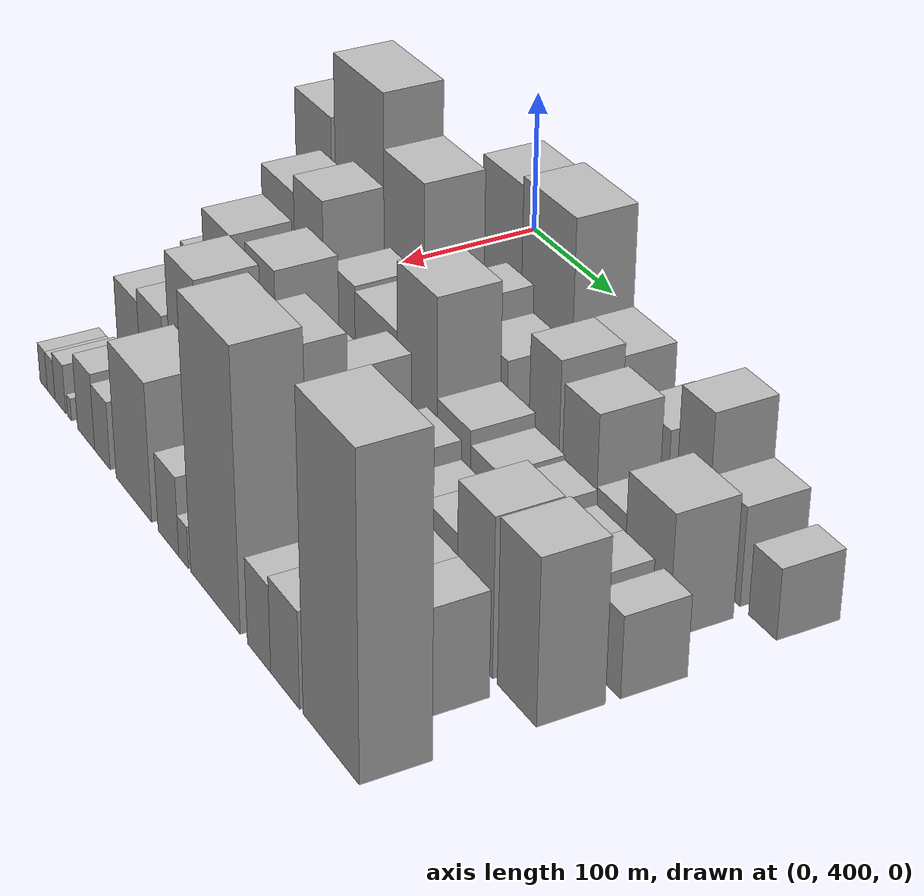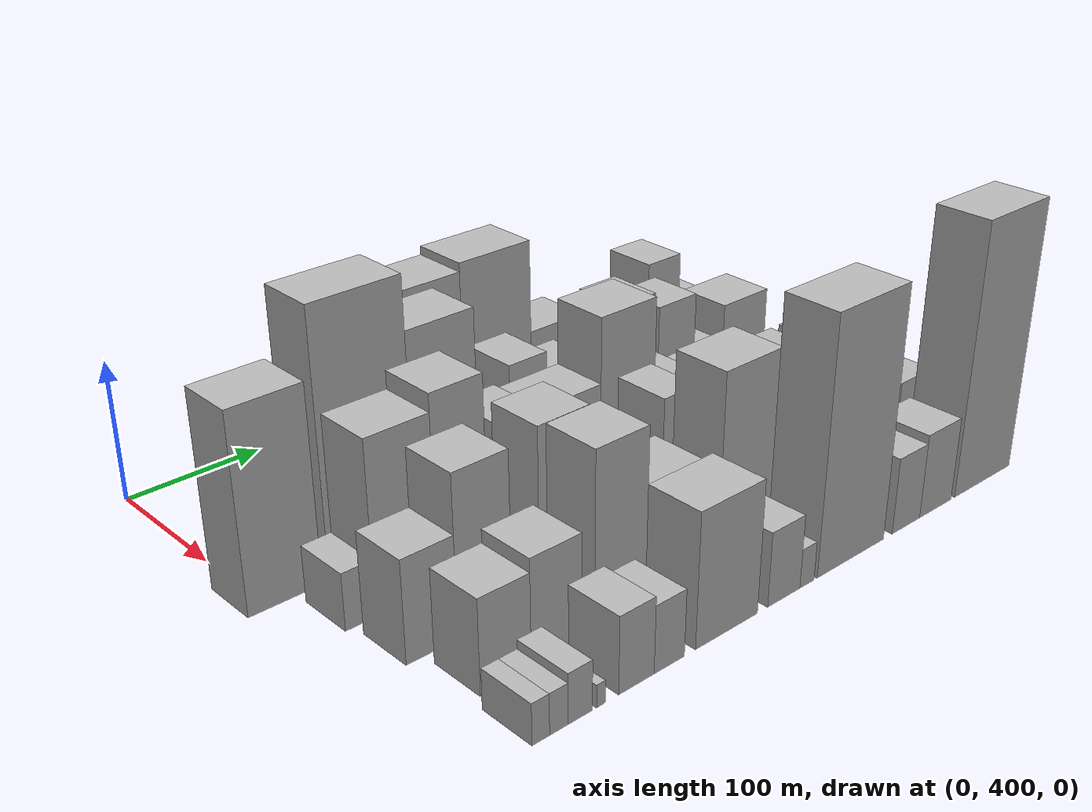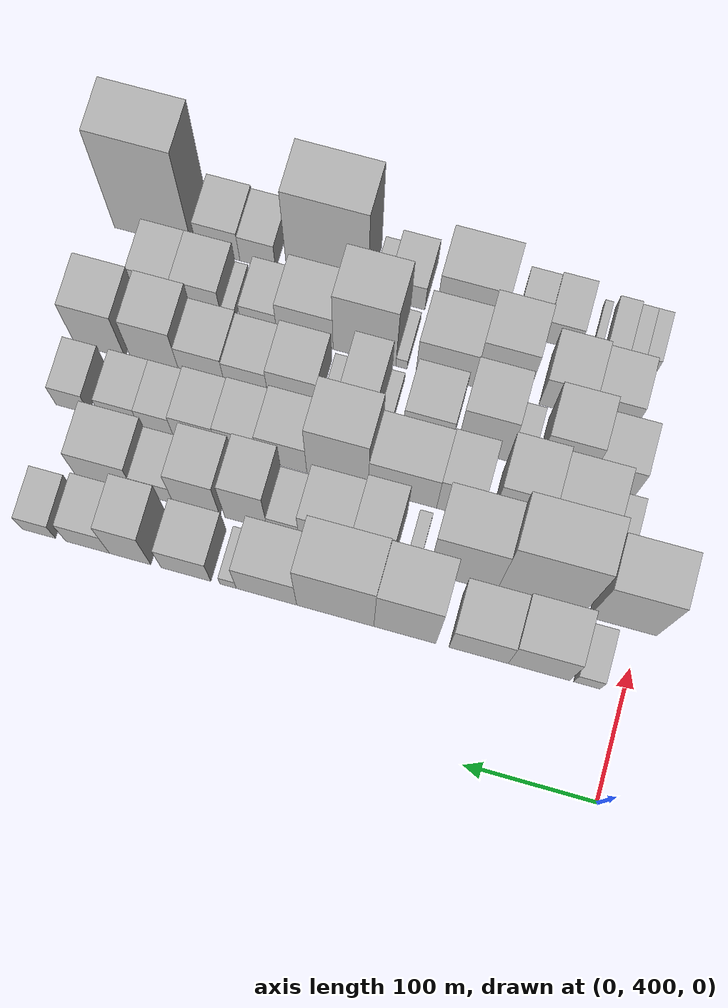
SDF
<sdf version="1.6">
 <world name="default">
  <model name="building_36">
   <static>1</static>
   <pose>100.0000 427.3676 0 0.000000 0.000000 0.000000</pose>
   <link name="link">
    <pose>0 0 18.00 0 0 0</pose>
    <collision name="collision"><geometry><box><size>40.0000 19.8844 36.0000</size></box></geometry></collision>
    <visual name="visual">
     <cast_shadows>0</cast_shadows>
     <geometry><box><size>40.0000 19.8844 36.0000</size></box></geometry>
     <material>
      <script>
       <uri>model://HANNAS_wall/materials/scripts</uri>
       <uri>model://HANNAS_wall/materials/textures</uri>
       <name>vrc/HANNAS_wall</name>
      </script>
     </material>
    </visual>
   </link>
  </model>
  <model name="building_37">
   <static>1</static>
   <pose>100.0000 463.5204 0 0.000000 0.000000 0.000000</pose>
   <link name="link">
    <pose>0 0 45.00 0 0 0</pose>
    <collision name="collision"><geometry><box><size>40.0000 46.4212 90.0000</size></box></geometry></collision>
    <visual name="visual">
     <cast_shadows>0</cast_shadows>
     <geometry><box><size>40.0000 46.4212 90.0000</size></box></geometry>
     <material>
      <script>
       <uri>model://HANNAS_wall/materials/scripts</uri>
       <uri>model://HANNAS_wall/materials/textures</uri>
       <name>vrc/HANNAS_wall</name>
      </script>
     </material>
    </visual>
   </link>
  </model>
  <model name="building_38">
   <static>1</static>
   <pose>100.0000 509.1310 0 0.000000 0.000000 0.000000</pose>
   <link name="link">
    <pose>0 0 40.50 0 0 0</pose>
    <collision name="collision"><geometry><box><size>40.0000 44.7999 81.0000</size></box></geometry></collision>
    <visual name="visual">
     <cast_shadows>0</cast_shadows>
     <geometry><box><size>40.0000 44.7999 81.0000</size></box></geometry>
     <material>
      <script>
       <uri>model://HANNAS_wall/materials/scripts</uri>
       <uri>model://HANNAS_wall/materials/textures</uri>
       <name>vrc/HANNAS_wall</name>
      </script>
     </material>
    </visual>
   </link>
  </model>
  <model name="building_39">
   <static>1</static>
   <pose>100.0000 565.0965 0 0.000000 0.000000 0.000000</pose>
   <link name="link">
    <pose>0 0 72.00 0 0 0</pose>
    <collision name="collision"><geometry><box><size>40.0000 47.1313 144.0000</size></box></geometry></collision>
    <visual name="visual">
     <cast_shadows>0</cast_shadows>
     <geometry><box><size>40.0000 47.1313 144.0000</size></box></geometry>
     <material>
      <script>
       <uri>model://HANNAS_wall/materials/scripts</uri>
       <uri>model://HANNAS_wall/materials/textures</uri>
       <name>vrc/HANNAS_wall</name>
      </script>
     </material>
    </visual>
   </link>
  </model>
  <model name="building_40">
   <static>1</static>
   <pose>100.0000 618.0978 0 0.000000 0.000000 0.000000</pose>
   <link name="link">
    <pose>0 0 75.00 0 0 0</pose>
    <collision name="collision"><geometry><box><size>40.0000 58.8712 150.0000</size></box></geometry></collision>
    <visual name="visual">
     <cast_shadows>0</cast_shadows>
     <geometry><box><size>40.0000 58.8712 150.0000</size></box></geometry>
     <material>
      <script>
       <uri>model://HANNAS_wall/materials/scripts</uri>
       <uri>model://HANNAS_wall/materials/textures</uri>
       <name>vrc/HANNAS_wall</name>
      </script>
     </material>
    </visual>
   </link>
  </model>
  <model name="building_41">
   <static>1</static>
   <pose>100.0000 670.7160 0 0.000000 0.000000 0.000000</pose>
   <link name="link">
    <pose>0 0 42.00 0 0 0</pose>
    <collision name="collision"><geometry><box><size>40.0000 46.3653 84.0000</size></box></geometry></collision>
    <visual name="visual">
     <cast_shadows>0</cast_shadows>
     <geometry><box><size>40.0000 46.3653 84.0000</size></box></geometry>
     <material>
      <script>
       <uri>model://HANNAS_wall/materials/scripts</uri>
       <uri>model://HANNAS_wall/materials/textures</uri>
       <name>vrc/HANNAS_wall</name>
      </script>
     </material>
    </visual>
   </link>
  </model>
  <model name="building_42">
   <static>1</static>
   <pose>100.0000 700.1381 0 0.000000 0.000000 0.000000</pose>
   <link name="link">
    <pose>0 0 13.50 0 0 0</pose>
    <collision name="collision"><geometry><box><size>40.0000 12.4789 27.0000</size></box></geometry></collision>
    <visual name="visual">
     <cast_shadows>0</cast_shadows>
     <geometry><box><size>40.0000 12.4789 27.0000</size></box></geometry>
     <material>
      <script>
       <uri>model://HANNAS_wall/materials/scripts</uri>
       <uri>model://HANNAS_wall/materials/textures</uri>
       <name>vrc/HANNAS_wall</name>
      </script>
     </material>
    </visual>
   </link>
  </model>
  <model name="building_43">
   <static>1</static>
   <pose>100.0000 732.5841 0 0.000000 0.000000 0.000000</pose>
   <link name="link">
    <pose>0 0 34.50 0 0 0</pose>
    <collision name="collision"><geometry><box><size>40.0000 38.4131 69.0000</size></box></geometry></collision>
    <visual name="visual">
     <cast_shadows>0</cast_shadows>
     <geometry><box><size>40.0000 38.4131 69.0000</size></box></geometry>
     <material>
      <script>
       <uri>model://HANNAS_wall/materials/scripts</uri>
       <uri>model://HANNAS_wall/materials/textures</uri>
       <name>vrc/HANNAS_wall</name>
      </script>
     </material>
    </visual>
   </link>
  </model>
  <model name="building_44">
   <static>1</static>
   <pose>100.0000 775.8096 0 0.000000 0.000000 0.000000</pose>
   <link name="link">
    <pose>0 0 51.00 0 0 0</pose>
    <collision name="collision"><geometry><box><size>40.0000 32.0379 102.0000</size></box></geometry></collision>
    <visual name="visual">
     <cast_shadows>0</cast_shadows>
     <geometry><box><size>40.0000 32.0379 102.0000</size></box></geometry>
     <material>
      <script>
       <uri>model://HANNAS_wall/materials/scripts</uri>
       <uri>model://HANNAS_wall/materials/textures</uri>
       <name>vrc/HANNAS_wall</name>
      </script>
     </material>
    </visual>
   </link>
  </model>
  <model name="building_45">
   <static>1</static>
   <pose>100.0000 808.8025 0 0.000000 0.000000 0.000000</pose>
   <link name="link">
    <pose>0 0 31.50 0 0 0</pose>
    <collision name="collision"><geometry><box><size>40.0000 33.9479 63.0000</size></box></geometry></collision>
    <visual name="visual">
     <cast_shadows>0</cast_shadows>
     <geometry><box><size>40.0000 33.9479 63.0000</size></box></geometry>
     <material>
      <script>
       <uri>model://HANNAS_wall/materials/scripts</uri>
       <uri>model://HANNAS_wall/materials/textures</uri>
       <name>vrc/HANNAS_wall</name>
      </script>
     </material>
    </visual>
   </link>
  </model>
  <model name="building_46">
   <static>1</static>
   <pose>100.0000 846.7750 0 0.000000 0.000000 0.000000</pose>
   <link name="link">
    <pose>0 0 22.50 0 0 0</pose>
    <collision name="collision"><geometry><box><size>40.0000 25.9970 45.0000</size></box></geometry></collision>
    <visual name="visual">
     <cast_shadows>0</cast_shadows>
     <geometry><box><size>40.0000 25.9970 45.0000</size></box></geometry>
     <material>
      <script>
       <uri>model://HANNAS_wall/materials/scripts</uri>
       <uri>model://HANNAS_wall/materials/textures</uri>
       <name>vrc/HANNAS_wall</name>
      </script>
     </material>
    </visual>
   </link>
  </model>
  <model name="building_84">
   <static>1</static>
   <pose>149.0000 412.4427 0 0.000000 0.000000 0.000000</pose>
   <link name="link">
    <pose>0 0 67.50 0 0 0</pose>
    <collision name="collision"><geometry><box><size>40.0000 51.4021 135.0000</size></box></geometry></collision>
    <visual name="visual">
     <cast_shadows>0</cast_shadows>
     <geometry><box><size>40.0000 51.4021 135.0000</size></box></geometry>
     <material>
      <script>
       <uri>model://HANNAS_wall/materials/scripts</uri>
       <uri>model://HANNAS_wall/materials/textures</uri>
       <name>vrc/HANNAS_wall</name>
      </script>
     </material>
    </visual>
   </link>
  </model>
  <model name="building_85">
   <static>1</static>
   <pose>149.0000 475.8453 0 0.000000 0.000000 0.000000</pose>
   <link name="link">
    <pose>0 0 90.00 0 0 0</pose>
    <collision name="collision"><geometry><box><size>40.0000 65.4031 180.0000</size></box></geometry></collision>
    <visual name="visual">
     <cast_shadows>0</cast_shadows>
     <geometry><box><size>40.0000 65.4031 180.0000</size></box></geometry>
     <material>
      <script>
       <uri>model://HANNAS_wall/materials/scripts</uri>
       <uri>model://HANNAS_wall/materials/textures</uri>
       <name>vrc/HANNAS_wall</name>
      </script>
     </material>
    </visual>
   </link>
  </model>
  <model name="building_86">
   <static>1</static>
   <pose>149.0000 534.3117 0 0.000000 0.000000 0.000000</pose>
   <link name="link">
    <pose>0 0 72.00 0 0 0</pose>
    <collision name="collision"><geometry><box><size>40.0000 51.5299 144.0000</size></box></geometry></collision>
    <visual name="visual">
     <cast_shadows>0</cast_shadows>
     <geometry><box><size>40.0000 51.5299 144.0000</size></box></geometry>
     <material>
      <script>
       <uri>model://HANNAS_wall/materials/scripts</uri>
       <uri>model://HANNAS_wall/materials/textures</uri>
       <name>vrc/HANNAS_wall</name>
      </script>
     </material>
    </visual>
   </link>
  </model>
  <model name="building_87">
   <static>1</static>
   <pose>149.0000 573.0275 0 0.000000 0.000000 0.000000</pose>
   <link name="link">
    <pose>0 0 12.00 0 0 0</pose>
    <collision name="collision"><geometry><box><size>40.0000 9.9017 24.0000</size></box></geometry></collision>
    <visual name="visual">
     <cast_shadows>0</cast_shadows>
     <geometry><box><size>40.0000 9.9017 24.0000</size></box></geometry>
     <material>
      <script>
       <uri>model://HANNAS_wall/materials/scripts</uri>
       <uri>model://HANNAS_wall/materials/textures</uri>
       <name>vrc/HANNAS_wall</name>
      </script>
     </material>
    </visual>
   </link>
  </model>
  <model name="building_88">
   <static>1</static>
   <pose>149.0000 602.5839 0 0.000000 0.000000 0.000000</pose>
   <link name="link">
    <pose>0 0 48.00 0 0 0</pose>
    <collision name="collision"><geometry><box><size>40.0000 31.2109 96.0000</size></box></geometry></collision>
    <visual name="visual">
     <cast_shadows>0</cast_shadows>
     <geometry><box><size>40.0000 31.2109 96.0000</size></box></geometry>
     <material>
      <script>
       <uri>model://HANNAS_wall/materials/scripts</uri>
       <uri>model://HANNAS_wall/materials/textures</uri>
       <name>vrc/HANNAS_wall</name>
      </script>
     </material>
    </visual>
   </link>
  </model>
  <model name="building_89">
   <static>1</static>
   <pose>149.0000 638.9740 0 0.000000 0.000000 0.000000</pose>
   <link name="link">
    <pose>0 0 39.00 0 0 0</pose>
    <collision name="collision"><geometry><box><size>40.0000 41.5693 78.0000</size></box></geometry></collision>
    <visual name="visual">
     <cast_shadows>0</cast_shadows>
     <geometry><box><size>40.0000 41.5693 78.0000</size></box></geometry>
     <material>
      <script>
       <uri>model://HANNAS_wall/materials/scripts</uri>
       <uri>model://HANNAS_wall/materials/textures</uri>
       <name>vrc/HANNAS_wall</name>
      </script>
     </material>
    </visual>
   </link>
  </model>
  <model name="building_90">
   <static>1</static>
   <pose>149.0000 671.9036 0 0.000000 0.000000 0.000000</pose>
   <link name="link">
    <pose>0 0 21.00 0 0 0</pose>
    <collision name="collision"><geometry><box><size>40.0000 24.2899 42.0000</size></box></geometry></collision>
    <visual name="visual">
     <cast_shadows>0</cast_shadows>
     <geometry><box><size>40.0000 24.2899 42.0000</size></box></geometry>
     <material>
      <script>
       <uri>model://HANNAS_wall/materials/scripts</uri>
       <uri>model://HANNAS_wall/materials/textures</uri>
       <name>vrc/HANNAS_wall</name>
      </script>
     </material>
    </visual>
   </link>
  </model>
  <model name="building_91">
   <static>1</static>
   <pose>149.0000 700.4992 0 0.000000 0.000000 0.000000</pose>
   <link name="link">
    <pose>0 0 54.00 0 0 0</pose>
    <collision name="collision"><geometry><box><size>40.0000 32.9015 108.0000</size></box></geometry></collision>
    <visual name="visual">
     <cast_shadows>0</cast_shadows>
     <geometry><box><size>40.0000 32.9015 108.0000</size></box></geometry>
     <material>
      <script>
       <uri>model://HANNAS_wall/materials/scripts</uri>
       <uri>model://HANNAS_wall/materials/textures</uri>
       <name>vrc/HANNAS_wall</name>
      </script>
     </material>
    </visual>
   </link>
  </model>
  <model name="building_92">
   <static>1</static>
   <pose>149.0000 738.9977 0 0.000000 0.000000 0.000000</pose>
   <link name="link">
    <pose>0 0 48.00 0 0 0</pose>
    <collision name="collision"><geometry><box><size>40.0000 36.0955 96.0000</size></box></geometry></collision>
    <visual name="visual">
     <cast_shadows>0</cast_shadows>
     <geometry><box><size>40.0000 36.0955 96.0000</size></box></geometry>
     <material>
      <script>
       <uri>model://HANNAS_wall/materials/scripts</uri>
       <uri>model://HANNAS_wall/materials/textures</uri>
       <name>vrc/HANNAS_wall</name>
      </script>
     </material>
    </visual>
   </link>
  </model>
  <model name="building_93">
   <static>1</static>
   <pose>149.0000 772.2128 0 0.000000 0.000000 0.000000</pose>
   <link name="link">
    <pose>0 0 25.50 0 0 0</pose>
    <collision name="collision"><geometry><box><size>40.0000 30.3348 51.0000</size></box></geometry></collision>
    <visual name="visual">
     <cast_shadows>0</cast_shadows>
     <geometry><box><size>40.0000 30.3348 51.0000</size></box></geometry>
     <material>
      <script>
       <uri>model://HANNAS_wall/materials/scripts</uri>
       <uri>model://HANNAS_wall/materials/textures</uri>
       <name>vrc/HANNAS_wall</name>
      </script>
     </material>
    </visual>
   </link>
  </model>
  <model name="building_94">
   <static>1</static>
   <pose>149.0000 810.0674 0 0.000000 0.000000 0.000000</pose>
   <link name="link">
    <pose>0 0 39.00 0 0 0</pose>
    <collision name="collision"><geometry><box><size>40.0000 45.3744 78.0000</size></box></geometry></collision>
    <visual name="visual">
     <cast_shadows>0</cast_shadows>
     <geometry><box><size>40.0000 45.3744 78.0000</size></box></geometry>
     <material>
      <script>
       <uri>model://HANNAS_wall/materials/scripts</uri>
       <uri>model://HANNAS_wall/materials/textures</uri>
       <name>vrc/HANNAS_wall</name>
      </script>
     </material>
    </visual>
   </link>
  </model>
  <model name="building_132">
   <static>1</static>
   <pose>198.0000 431.1015 0 0.000000 0.000000 0.000000</pose>
   <link name="link">
    <pose>0 0 19.50 0 0 0</pose>
    <collision name="collision"><geometry><box><size>40.0000 21.1421 39.0000</size></box></geometry></collision>
    <visual name="visual">
     <cast_shadows>0</cast_shadows>
     <geometry><box><size>40.0000 21.1421 39.0000</size></box></geometry>
     <material>
      <script>
       <uri>model://HANNAS_wall/materials/scripts</uri>
       <uri>model://HANNAS_wall/materials/textures</uri>
       <name>vrc/HANNAS_wall</name>
      </script>
     </material>
    </visual>
   </link>
  </model>
  <model name="building_133">
   <static>1</static>
   <pose>198.0000 464.4407 0 0.000000 0.000000 0.000000</pose>
   <link name="link">
    <pose>0 0 58.50 0 0 0</pose>
    <collision name="collision"><geometry><box><size>40.0000 45.5363 117.0000</size></box></geometry></collision>
    <visual name="visual">
     <cast_shadows>0</cast_shadows>
     <geometry><box><size>40.0000 45.5363 117.0000</size></box></geometry>
     <material>
      <script>
       <uri>model://HANNAS_wall/materials/scripts</uri>
       <uri>model://HANNAS_wall/materials/textures</uri>
       <name>vrc/HANNAS_wall</name>
      </script>
     </material>
    </visual>
   </link>
  </model>
  <model name="building_134">
   <static>1</static>
   <pose>198.0000 506.7298 0 0.000000 0.000000 0.000000</pose>
   <link name="link">
    <pose>0 0 64.50 0 0 0</pose>
    <collision name="collision"><geometry><box><size>40.0000 39.0421 129.0000</size></box></geometry></collision>
    <visual name="visual">
     <cast_shadows>0</cast_shadows>
     <geometry><box><size>40.0000 39.0421 129.0000</size></box></geometry>
     <material>
      <script>
       <uri>model://HANNAS_wall/materials/scripts</uri>
       <uri>model://HANNAS_wall/materials/textures</uri>
       <name>vrc/HANNAS_wall</name>
      </script>
     </material>
    </visual>
   </link>
  </model>
  <model name="building_135">
   <static>1</static>
   <pose>198.0000 550.6880 0 0.000000 0.000000 0.000000</pose>
   <link name="link">
    <pose>0 0 46.50 0 0 0</pose>
    <collision name="collision"><geometry><box><size>40.0000 32.8744 93.0000</size></box></geometry></collision>
    <visual name="visual">
     <cast_shadows>0</cast_shadows>
     <geometry><box><size>40.0000 32.8744 93.0000</size></box></geometry>
     <material>
      <script>
       <uri>model://HANNAS_wall/materials/scripts</uri>
       <uri>model://HANNAS_wall/materials/textures</uri>
       <name>vrc/HANNAS_wall</name>
      </script>
     </material>
    </visual>
   </link>
  </model>
  <model name="building_136">
   <static>1</static>
   <pose>198.0000 593.5740 0 0.000000 0.000000 0.000000</pose>
   <link name="link">
    <pose>0 0 45.00 0 0 0</pose>
    <collision name="collision"><geometry><box><size>40.0000 52.8975 90.0000</size></box></geometry></collision>
    <visual name="visual">
     <cast_shadows>0</cast_shadows>
     <geometry><box><size>40.0000 52.8975 90.0000</size></box></geometry>
     <material>
      <script>
       <uri>model://HANNAS_wall/materials/scripts</uri>
       <uri>model://HANNAS_wall/materials/textures</uri>
       <name>vrc/HANNAS_wall</name>
      </script>
     </material>
    </visual>
   </link>
  </model>
  <model name="building_137">
   <static>1</static>
   <pose>198.0000 643.8140 0 0.000000 0.000000 0.000000</pose>
   <link name="link">
    <pose>0 0 67.50 0 0 0</pose>
    <collision name="collision"><geometry><box><size>40.0000 47.5825 135.0000</size></box></geometry></collision>
    <visual name="visual">
     <cast_shadows>0</cast_shadows>
     <geometry><box><size>40.0000 47.5825 135.0000</size></box></geometry>
     <material>
      <script>
       <uri>model://HANNAS_wall/materials/scripts</uri>
       <uri>model://HANNAS_wall/materials/textures</uri>
       <name>vrc/HANNAS_wall</name>
      </script>
     </material>
    </visual>
   </link>
  </model>
  <model name="building_138">
   <static>1</static>
   <pose>198.0000 686.8276 0 0.000000 0.000000 0.000000</pose>
   <link name="link">
    <pose>0 0 36.00 0 0 0</pose>
    <collision name="collision"><geometry><box><size>40.0000 38.4447 72.0000</size></box></geometry></collision>
    <visual name="visual">
     <cast_shadows>0</cast_shadows>
     <geometry><box><size>40.0000 38.4447 72.0000</size></box></geometry>
     <material>
      <script>
       <uri>model://HANNAS_wall/materials/scripts</uri>
       <uri>model://HANNAS_wall/materials/textures</uri>
       <name>vrc/HANNAS_wall</name>
      </script>
     </material>
    </visual>
   </link>
  </model>
  <model name="building_139">
   <static>1</static>
   <pose>198.0000 722.0853 0 0.000000 0.000000 0.000000</pose>
   <link name="link">
    <pose>0 0 31.50 0 0 0</pose>
    <collision name="collision"><geometry><box><size>40.0000 32.0707 63.0000</size></box></geometry></collision>
    <visual name="visual">
     <cast_shadows>0</cast_shadows>
     <geometry><box><size>40.0000 32.0707 63.0000</size></box></geometry>
     <material>
      <script>
       <uri>model://HANNAS_wall/materials/scripts</uri>
       <uri>model://HANNAS_wall/materials/textures</uri>
       <name>vrc/HANNAS_wall</name>
      </script>
     </material>
    </visual>
   </link>
  </model>
  <model name="building_140">
   <static>1</static>
   <pose>198.0000 754.9387 0 0.000000 0.000000 0.000000</pose>
   <link name="link">
    <pose>0 0 30.00 0 0 0</pose>
    <collision name="collision"><geometry><box><size>40.0000 33.6360 60.0000</size></box></geometry></collision>
    <visual name="visual">
     <cast_shadows>0</cast_shadows>
     <geometry><box><size>40.0000 33.6360 60.0000</size></box></geometry>
     <material>
      <script>
       <uri>model://HANNAS_wall/materials/scripts</uri>
       <uri>model://HANNAS_wall/materials/textures</uri>
       <name>vrc/HANNAS_wall</name>
      </script>
     </material>
    </visual>
   </link>
  </model>
  <model name="building_141">
   <static>1</static>
   <pose>198.0000 785.2299 0 0.000000 0.000000 0.000000</pose>
   <link name="link">
    <pose>0 0 25.50 0 0 0</pose>
    <collision name="collision"><geometry><box><size>40.0000 26.9463 51.0000</size></box></geometry></collision>
    <visual name="visual">
     <cast_shadows>0</cast_shadows>
     <geometry><box><size>40.0000 26.9463 51.0000</size></box></geometry>
     <material>
      <script>
       <uri>model://HANNAS_wall/materials/scripts</uri>
       <uri>model://HANNAS_wall/materials/textures</uri>
       <name>vrc/HANNAS_wall</name>
      </script>
     </material>
    </visual>
   </link>
  </model>
  <model name="building_142">
   <static>1</static>
   <pose>198.0000 813.8936 0 0.000000 0.000000 0.000000</pose>
   <link name="link">
    <pose>0 0 25.50 0 0 0</pose>
    <collision name="collision"><geometry><box><size>40.0000 30.3813 51.0000</size></box></geometry></collision>
    <visual name="visual">
     <cast_shadows>0</cast_shadows>
     <geometry><box><size>40.0000 30.3813 51.0000</size></box></geometry>
     <material>
      <script>
       <uri>model://HANNAS_wall/materials/scripts</uri>
       <uri>model://HANNAS_wall/materials/textures</uri>
       <name>vrc/HANNAS_wall</name>
      </script>
     </material>
    </visual>
   </link>
  </model>
  <model name="building_143">
   <static>1</static>
   <pose>198.0000 851.2576 0 0.000000 0.000000 0.000000</pose>
   <link name="link">
    <pose>0 0 25.50 0 0 0</pose>
    <collision name="collision"><geometry><box><size>40.0000 26.3465 51.0000</size></box></geometry></collision>
    <visual name="visual">
     <cast_shadows>0</cast_shadows>
     <geometry><box><size>40.0000 26.3465 51.0000</size></box></geometry>
     <material>
      <script>
       <uri>model://HANNAS_wall/materials/scripts</uri>
       <uri>model://HANNAS_wall/materials/textures</uri>
       <name>vrc/HANNAS_wall</name>
      </script>
     </material>
    </visual>
   </link>
  </model>
  <model name="building_177">
   <static>1</static>
   <pose>247.0000 444.8754 0 0.000000 0.000000 0.000000</pose>
   <link name="link">
    <pose>0 0 34.50 0 0 0</pose>
    <collision name="collision"><geometry><box><size>40.0000 36.4654 69.0000</size></box></geometry></collision>
    <visual name="visual">
     <cast_shadows>0</cast_shadows>
     <geometry><box><size>40.0000 36.4654 69.0000</size></box></geometry>
     <material>
      <script>
       <uri>model://HANNAS_wall/materials/scripts</uri>
       <uri>model://HANNAS_wall/materials/textures</uri>
       <name>vrc/HANNAS_wall</name>
      </script>
     </material>
    </visual>
   </link>
  </model>
  <model name="building_178">
   <static>1</static>
   <pose>247.0000 483.1943 0 0.000000 0.000000 0.000000</pose>
   <link name="link">
    <pose>0 0 54.00 0 0 0</pose>
    <collision name="collision"><geometry><box><size>40.0000 40.1725 108.0000</size></box></geometry></collision>
    <visual name="visual">
     <cast_shadows>0</cast_shadows>
     <geometry><box><size>40.0000 40.1725 108.0000</size></box></geometry>
     <material>
      <script>
       <uri>model://HANNAS_wall/materials/scripts</uri>
       <uri>model://HANNAS_wall/materials/textures</uri>
       <name>vrc/HANNAS_wall</name>
      </script>
     </material>
    </visual>
   </link>
  </model>
  <model name="building_179">
   <static>1</static>
   <pose>247.0000 515.9876 0 0.000000 0.000000 0.000000</pose>
   <link name="link">
    <pose>0 0 15.00 0 0 0</pose>
    <collision name="collision"><geometry><box><size>40.0000 17.4141 30.0000</size></box></geometry></collision>
    <visual name="visual">
     <cast_shadows>0</cast_shadows>
     <geometry><box><size>40.0000 17.4141 30.0000</size></box></geometry>
     <material>
      <script>
       <uri>model://HANNAS_wall/materials/scripts</uri>
       <uri>model://HANNAS_wall/materials/textures</uri>
       <name>vrc/HANNAS_wall</name>
      </script>
     </material>
    </visual>
   </link>
  </model>
  <model name="building_180">
   <static>1</static>
   <pose>247.0000 544.5865 0 0.000000 0.000000 0.000000</pose>
   <link name="link">
    <pose>0 0 57.00 0 0 0</pose>
    <collision name="collision"><geometry><box><size>40.0000 39.7839 114.0000</size></box></geometry></collision>
    <visual name="visual">
     <cast_shadows>0</cast_shadows>
     <geometry><box><size>40.0000 39.7839 114.0000</size></box></geometry>
     <material>
      <script>
       <uri>model://HANNAS_wall/materials/scripts</uri>
       <uri>model://HANNAS_wall/materials/textures</uri>
       <name>vrc/HANNAS_wall</name>
      </script>
     </material>
    </visual>
   </link>
  </model>
  <model name="building_181">
   <static>1</static>
   <pose>247.0000 587.6220 0 0.000000 0.000000 0.000000</pose>
   <link name="link">
    <pose>0 0 34.50 0 0 0</pose>
    <collision name="collision"><geometry><box><size>40.0000 38.2872 69.0000</size></box></geometry></collision>
    <visual name="visual">
     <cast_shadows>0</cast_shadows>
     <geometry><box><size>40.0000 38.2872 69.0000</size></box></geometry>
     <material>
      <script>
       <uri>model://HANNAS_wall/materials/scripts</uri>
       <uri>model://HANNAS_wall/materials/textures</uri>
       <name>vrc/HANNAS_wall</name>
      </script>
     </material>
    </visual>
   </link>
  </model>
  <model name="building_182">
   <static>1</static>
   <pose>247.0000 620.9271 0 0.000000 0.000000 0.000000</pose>
   <link name="link">
    <pose>0 0 10.50 0 0 0</pose>
    <collision name="collision"><geometry><box><size>40.0000 10.3230 21.0000</size></box></geometry></collision>
    <visual name="visual">
     <cast_shadows>0</cast_shadows>
     <geometry><box><size>40.0000 10.3230 21.0000</size></box></geometry>
     <material>
      <script>
       <uri>model://HANNAS_wall/materials/scripts</uri>
       <uri>model://HANNAS_wall/materials/textures</uri>
       <name>vrc/HANNAS_wall</name>
      </script>
     </material>
    </visual>
   </link>
  </model>
  <model name="building_183">
   <static>1</static>
   <pose>247.0000 640.5038 0 0.000000 0.000000 0.000000</pose>
   <link name="link">
    <pose>0 0 48.00 0 0 0</pose>
    <collision name="collision"><geometry><box><size>40.0000 28.8304 96.0000</size></box></geometry></collision>
    <visual name="visual">
     <cast_shadows>0</cast_shadows>
     <geometry><box><size>40.0000 28.8304 96.0000</size></box></geometry>
     <material>
      <script>
       <uri>model://HANNAS_wall/materials/scripts</uri>
       <uri>model://HANNAS_wall/materials/textures</uri>
       <name>vrc/HANNAS_wall</name>
      </script>
     </material>
    </visual>
   </link>
  </model>
  <model name="building_184">
   <static>1</static>
   <pose>247.0000 665.0147 0 0.000000 0.000000 0.000000</pose>
   <link name="link">
    <pose>0 0 12.00 0 0 0</pose>
    <collision name="collision"><geometry><box><size>40.0000 10.1915 24.0000</size></box></geometry></collision>
    <visual name="visual">
     <cast_shadows>0</cast_shadows>
     <geometry><box><size>40.0000 10.1915 24.0000</size></box></geometry>
     <material>
      <script>
       <uri>model://HANNAS_wall/materials/scripts</uri>
       <uri>model://HANNAS_wall/materials/textures</uri>
       <name>vrc/HANNAS_wall</name>
      </script>
     </material>
    </visual>
   </link>
  </model>
  <model name="building_185">
   <static>1</static>
   <pose>247.0000 692.5478 0 0.000000 0.000000 0.000000</pose>
   <link name="link">
    <pose>0 0 36.00 0 0 0</pose>
    <collision name="collision"><geometry><box><size>40.0000 38.8747 72.0000</size></box></geometry></collision>
    <visual name="visual">
     <cast_shadows>0</cast_shadows>
     <geometry><box><size>40.0000 38.8747 72.0000</size></box></geometry>
     <material>
      <script>
       <uri>model://HANNAS_wall/materials/scripts</uri>
       <uri>model://HANNAS_wall/materials/textures</uri>
       <name>vrc/HANNAS_wall</name>
      </script>
     </material>
    </visual>
   </link>
  </model>
  <model name="building_186">
   <static>1</static>
   <pose>247.0000 728.9888 0 0.000000 0.000000 0.000000</pose>
   <link name="link">
    <pose>0 0 30.00 0 0 0</pose>
    <collision name="collision"><geometry><box><size>40.0000 34.0072 60.0000</size></box></geometry></collision>
    <visual name="visual">
     <cast_shadows>0</cast_shadows>
     <geometry><box><size>40.0000 34.0072 60.0000</size></box></geometry>
     <material>
      <script>
       <uri>model://HANNAS_wall/materials/scripts</uri>
       <uri>model://HANNAS_wall/materials/textures</uri>
       <name>vrc/HANNAS_wall</name>
      </script>
     </material>
    </visual>
   </link>
  </model>
  <model name="building_187">
   <static>1</static>
   <pose>247.0000 763.8397 0 0.000000 0.000000 0.000000</pose>
   <link name="link">
    <pose>0 0 33.00 0 0 0</pose>
    <collision name="collision"><geometry><box><size>40.0000 35.6947 66.0000</size></box></geometry></collision>
    <visual name="visual">
     <cast_shadows>0</cast_shadows>
     <geometry><box><size>40.0000 35.6947 66.0000</size></box></geometry>
     <material>
      <script>
       <uri>model://HANNAS_wall/materials/scripts</uri>
       <uri>model://HANNAS_wall/materials/textures</uri>
       <name>vrc/HANNAS_wall</name>
      </script>
     </material>
    </visual>
   </link>
  </model>
  <model name="building_188">
   <static>1</static>
   <pose>247.0000 800.7514 0 0.000000 0.000000 0.000000</pose>
   <link name="link">
    <pose>0 0 49.50 0 0 0</pose>
    <collision name="collision"><geometry><box><size>40.0000 38.1287 99.0000</size></box></geometry></collision>
    <visual name="visual">
     <cast_shadows>0</cast_shadows>
     <geometry><box><size>40.0000 38.1287 99.0000</size></box></geometry>
     <material>
      <script>
       <uri>model://HANNAS_wall/materials/scripts</uri>
       <uri>model://HANNAS_wall/materials/textures</uri>
       <name>vrc/HANNAS_wall</name>
      </script>
     </material>
    </visual>
   </link>
  </model>
  <model name="building_189">
   <static>1</static>
   <pose>247.0000 844.6687 0 0.000000 0.000000 0.000000</pose>
   <link name="link">
    <pose>0 0 51.00 0 0 0</pose>
    <collision name="collision"><geometry><box><size>40.0000 39.7057 102.0000</size></box></geometry></collision>
    <visual name="visual">
     <cast_shadows>0</cast_shadows>
     <geometry><box><size>40.0000 39.7057 102.0000</size></box></geometry>
     <material>
      <script>
       <uri>model://HANNAS_wall/materials/scripts</uri>
       <uri>model://HANNAS_wall/materials/textures</uri>
       <name>vrc/HANNAS_wall</name>
      </script>
     </material>
    </visual>
   </link>
  </model>
  <model name="building_225">
   <static>1</static>
   <pose>296.0000 457.3570 0 0.000000 0.000000 0.000000</pose>
   <link name="link">
    <pose>0 0 31.50 0 0 0</pose>
    <collision name="collision"><geometry><box><size>40.0000 36.1188 63.0000</size></box></geometry></collision>
    <visual name="visual">
     <cast_shadows>0</cast_shadows>
     <geometry><box><size>40.0000 36.1188 63.0000</size></box></geometry>
     <material>
      <script>
       <uri>model://HANNAS_wall/materials/scripts</uri>
       <uri>model://HANNAS_wall/materials/textures</uri>
       <name>vrc/HANNAS_wall</name>
      </script>
     </material>
    </visual>
   </link>
  </model>
  <model name="building_226">
   <static>1</static>
   <pose>296.0000 494.2728 0 0.000000 0.000000 0.000000</pose>
   <link name="link">
    <pose>0 0 36.00 0 0 0</pose>
    <collision name="collision"><geometry><box><size>40.0000 37.7128 72.0000</size></box></geometry></collision>
    <visual name="visual">
     <cast_shadows>0</cast_shadows>
     <geometry><box><size>40.0000 37.7128 72.0000</size></box></geometry>
     <material>
      <script>
       <uri>model://HANNAS_wall/materials/scripts</uri>
       <uri>model://HANNAS_wall/materials/textures</uri>
       <name>vrc/HANNAS_wall</name>
      </script>
     </material>
    </visual>
   </link>
  </model>
  <model name="building_227">
   <static>1</static>
   <pose>296.0000 543.5189 0 0.000000 0.000000 0.000000</pose>
   <link name="link">
    <pose>0 0 60.00 0 0 0</pose>
    <collision name="collision"><geometry><box><size>40.0000 40.7793 120.0000</size></box></geometry></collision>
    <visual name="visual">
     <cast_shadows>0</cast_shadows>
     <geometry><box><size>40.0000 40.7793 120.0000</size></box></geometry>
     <material>
      <script>
       <uri>model://HANNAS_wall/materials/scripts</uri>
       <uri>model://HANNAS_wall/materials/textures</uri>
       <name>vrc/HANNAS_wall</name>
      </script>
     </material>
    </visual>
   </link>
  </model>
  <model name="building_228">
   <static>1</static>
   <pose>296.0000 586.6728 0 0.000000 0.000000 0.000000</pose>
   <link name="link">
    <pose>0 0 40.50 0 0 0</pose>
    <collision name="collision"><geometry><box><size>40.0000 45.5285 81.0000</size></box></geometry></collision>
    <visual name="visual">
     <cast_shadows>0</cast_shadows>
     <geometry><box><size>40.0000 45.5285 81.0000</size></box></geometry>
     <material>
      <script>
       <uri>model://HANNAS_wall/materials/scripts</uri>
       <uri>model://HANNAS_wall/materials/textures</uri>
       <name>vrc/HANNAS_wall</name>
      </script>
     </material>
    </visual>
   </link>
  </model>
  <model name="building_229">
   <static>1</static>
   <pose>296.0000 620.8857 0 0.000000 0.000000 0.000000</pose>
   <link name="link">
    <pose>0 0 10.50 0 0 0</pose>
    <collision name="collision"><geometry><box><size>40.0000 8.8974 21.0000</size></box></geometry></collision>
    <visual name="visual">
     <cast_shadows>0</cast_shadows>
     <geometry><box><size>40.0000 8.8974 21.0000</size></box></geometry>
     <material>
      <script>
       <uri>model://HANNAS_wall/materials/scripts</uri>
       <uri>model://HANNAS_wall/materials/textures</uri>
       <name>vrc/HANNAS_wall</name>
      </script>
     </material>
    </visual>
   </link>
  </model>
  <model name="building_230">
   <static>1</static>
   <pose>296.0000 650.0204 0 0.000000 0.000000 0.000000</pose>
   <link name="link">
    <pose>0 0 66.00 0 0 0</pose>
    <collision name="collision"><geometry><box><size>40.0000 49.3721 132.0000</size></box></geometry></collision>
    <visual name="visual">
     <cast_shadows>0</cast_shadows>
     <geometry><box><size>40.0000 49.3721 132.0000</size></box></geometry>
     <material>
      <script>
       <uri>model://HANNAS_wall/materials/scripts</uri>
       <uri>model://HANNAS_wall/materials/textures</uri>
       <name>vrc/HANNAS_wall</name>
      </script>
     </material>
    </visual>
   </link>
  </model>
  <model name="building_231">
   <static>1</static>
   <pose>296.0000 696.8854 0 0.000000 0.000000 0.000000</pose>
   <link name="link">
    <pose>0 0 37.50 0 0 0</pose>
    <collision name="collision"><geometry><box><size>40.0000 44.3579 75.0000</size></box></geometry></collision>
    <visual name="visual">
     <cast_shadows>0</cast_shadows>
     <geometry><box><size>40.0000 44.3579 75.0000</size></box></geometry>
     <material>
      <script>
       <uri>model://HANNAS_wall/materials/scripts</uri>
       <uri>model://HANNAS_wall/materials/textures</uri>
       <name>vrc/HANNAS_wall</name>
      </script>
     </material>
    </visual>
   </link>
  </model>
  <model name="building_232">
   <static>1</static>
   <pose>296.0000 733.3303 0 0.000000 0.000000 0.000000</pose>
   <link name="link">
    <pose>0 0 24.00 0 0 0</pose>
    <collision name="collision"><geometry><box><size>40.0000 28.5317 48.0000</size></box></geometry></collision>
    <visual name="visual">
     <cast_shadows>0</cast_shadows>
     <geometry><box><size>40.0000 28.5317 48.0000</size></box></geometry>
     <material>
      <script>
       <uri>model://HANNAS_wall/materials/scripts</uri>
       <uri>model://HANNAS_wall/materials/textures</uri>
       <name>vrc/HANNAS_wall</name>
      </script>
     </material>
    </visual>
   </link>
  </model>
  <model name="building_233">
   <static>1</static>
   <pose>296.0000 757.6944 0 0.000000 0.000000 0.000000</pose>
   <link name="link">
    <pose>0 0 12.00 0 0 0</pose>
    <collision name="collision"><geometry><box><size>40.0000 10.1966 24.0000</size></box></geometry></collision>
    <visual name="visual">
     <cast_shadows>0</cast_shadows>
     <geometry><box><size>40.0000 10.1966 24.0000</size></box></geometry>
     <material>
      <script>
       <uri>model://HANNAS_wall/materials/scripts</uri>
       <uri>model://HANNAS_wall/materials/textures</uri>
       <name>vrc/HANNAS_wall</name>
      </script>
     </material>
    </visual>
   </link>
  </model>
  <model name="building_234">
   <static>1</static>
   <pose>296.0000 781.0560 0 0.000000 0.000000 0.000000</pose>
   <link name="link">
    <pose>0 0 33.00 0 0 0</pose>
    <collision name="collision"><geometry><box><size>40.0000 36.5265 66.0000</size></box></geometry></collision>
    <visual name="visual">
     <cast_shadows>0</cast_shadows>
     <geometry><box><size>40.0000 36.5265 66.0000</size></box></geometry>
     <material>
      <script>
       <uri>model://HANNAS_wall/materials/scripts</uri>
       <uri>model://HANNAS_wall/materials/textures</uri>
       <name>vrc/HANNAS_wall</name>
      </script>
     </material>
    </visual>
   </link>
  </model>
  <model name="building_235">
   <static>1</static>
   <pose>296.0000 815.9996 0 0.000000 0.000000 0.000000</pose>
   <link name="link">
    <pose>0 0 33.00 0 0 0</pose>
    <collision name="collision"><geometry><box><size>40.0000 33.3607 66.0000</size></box></geometry></collision>
    <visual name="visual">
     <cast_shadows>0</cast_shadows>
     <geometry><box><size>40.0000 33.3607 66.0000</size></box></geometry>
     <material>
      <script>
       <uri>model://HANNAS_wall/materials/scripts</uri>
       <uri>model://HANNAS_wall/materials/textures</uri>
       <name>vrc/HANNAS_wall</name>
      </script>
     </material>
    </visual>
   </link>
  </model>
  <model name="building_272">
   <static>1</static>
   <pose>345.0000 439.1682 0 0.000000 0.000000 0.000000</pose>
   <link name="link">
    <pose>0 0 13.50 0 0 0</pose>
    <collision name="collision"><geometry><box><size>40.0000 12.0872 27.0000</size></box></geometry></collision>
    <visual name="visual">
     <cast_shadows>0</cast_shadows>
     <geometry><box><size>40.0000 12.0872 27.0000</size></box></geometry>
     <material>
      <script>
       <uri>model://HANNAS_wall/materials/scripts</uri>
       <uri>model://HANNAS_wall/materials/textures</uri>
       <name>vrc/HANNAS_wall</name>
      </script>
     </material>
    </visual>
   </link>
  </model>
  <model name="building_273">
   <static>1</static>
   <pose>345.0000 451.6501 0 0.000000 0.000000 0.000000</pose>
   <link name="link">
    <pose>0 0 13.50 0 0 0</pose>
    <collision name="collision"><geometry><box><size>40.0000 12.8766 27.0000</size></box></geometry></collision>
    <visual name="visual">
     <cast_shadows>0</cast_shadows>
     <geometry><box><size>40.0000 12.8766 27.0000</size></box></geometry>
     <material>
      <script>
       <uri>model://HANNAS_wall/materials/scripts</uri>
       <uri>model://HANNAS_wall/materials/textures</uri>
       <name>vrc/HANNAS_wall</name>
      </script>
     </material>
    </visual>
   </link>
  </model>
  <model name="building_274">
   <static>1</static>
   <pose>345.0000 466.8153 0 0.000000 0.000000 0.000000</pose>
   <link name="link">
    <pose>0 0 16.50 0 0 0</pose>
    <collision name="collision"><geometry><box><size>40.0000 17.4538 33.0000</size></box></geometry></collision>
    <visual name="visual">
     <cast_shadows>0</cast_shadows>
     <geometry><box><size>40.0000 17.4538 33.0000</size></box></geometry>
     <material>
      <script>
       <uri>model://HANNAS_wall/materials/scripts</uri>
       <uri>model://HANNAS_wall/materials/textures</uri>
       <name>vrc/HANNAS_wall</name>
      </script>
     </material>
    </visual>
   </link>
  </model>
  <model name="building_275">
   <static>1</static>
   <pose>345.0000 481.6952 0 0.000000 0.000000 0.000000</pose>
   <link name="link">
    <pose>0 0 7.50 0 0 0</pose>
    <collision name="collision"><geometry><box><size>40.0000 6.3061 15.0000</size></box></geometry></collision>
    <visual name="visual">
     <cast_shadows>0</cast_shadows>
     <geometry><box><size>40.0000 6.3061 15.0000</size></box></geometry>
     <material>
      <script>
       <uri>model://HANNAS_wall/materials/scripts</uri>
       <uri>model://HANNAS_wall/materials/textures</uri>
       <name>vrc/HANNAS_wall</name>
      </script>
     </material>
    </visual>
   </link>
  </model>
  <model name="building_276">
   <static>1</static>
   <pose>345.0000 508.2989 0 0.000000 0.000000 0.000000</pose>
   <link name="link">
    <pose>0 0 25.50 0 0 0</pose>
    <collision name="collision"><geometry><box><size>40.0000 26.9014 51.0000</size></box></geometry></collision>
    <visual name="visual">
     <cast_shadows>0</cast_shadows>
     <geometry><box><size>40.0000 26.9014 51.0000</size></box></geometry>
     <material>
      <script>
       <uri>model://HANNAS_wall/materials/scripts</uri>
       <uri>model://HANNAS_wall/materials/textures</uri>
       <name>vrc/HANNAS_wall</name>
      </script>
     </material>
    </visual>
   </link>
  </model>
  <model name="building_277">
   <static>1</static>
   <pose>345.0000 533.6495 0 0.000000 0.000000 0.000000</pose>
   <link name="link">
    <pose>0 0 22.50 0 0 0</pose>
    <collision name="collision"><geometry><box><size>40.0000 23.7997 45.0000</size></box></geometry></collision>
    <visual name="visual">
     <cast_shadows>0</cast_shadows>
     <geometry><box><size>40.0000 23.7997 45.0000</size></box></geometry>
     <material>
      <script>
       <uri>model://HANNAS_wall/materials/scripts</uri>
       <uri>model://HANNAS_wall/materials/textures</uri>
       <name>vrc/HANNAS_wall</name>
      </script>
     </material>
    </visual>
   </link>
  </model>
  <model name="building_278">
   <static>1</static>
   <pose>345.0000 580.5807 0 0.000000 0.000000 0.000000</pose>
   <link name="link">
    <pose>0 0 45.00 0 0 0</pose>
    <collision name="collision"><geometry><box><size>40.0000 52.0626 90.0000</size></box></geometry></collision>
    <visual name="visual">
     <cast_shadows>0</cast_shadows>
     <geometry><box><size>40.0000 52.0626 90.0000</size></box></geometry>
     <material>
      <script>
       <uri>model://HANNAS_wall/materials/scripts</uri>
       <uri>model://HANNAS_wall/materials/textures</uri>
       <name>vrc/HANNAS_wall</name>
      </script>
     </material>
    </visual>
   </link>
  </model>
  <model name="building_279">
   <static>1</static>
   <pose>345.0000 630.0572 0 0.000000 0.000000 0.000000</pose>
   <link name="link">
    <pose>0 0 25.50 0 0 0</pose>
    <collision name="collision"><geometry><box><size>40.0000 28.8905 51.0000</size></box></geometry></collision>
    <visual name="visual">
     <cast_shadows>0</cast_shadows>
     <geometry><box><size>40.0000 28.8905 51.0000</size></box></geometry>
     <material>
      <script>
       <uri>model://HANNAS_wall/materials/scripts</uri>
       <uri>model://HANNAS_wall/materials/textures</uri>
       <name>vrc/HANNAS_wall</name>
      </script>
     </material>
    </visual>
   </link>
  </model>
  <model name="building_280">
   <static>1</static>
   <pose>345.0000 651.0742 0 0.000000 0.000000 0.000000</pose>
   <link name="link">
    <pose>0 0 13.50 0 0 0</pose>
    <collision name="collision"><geometry><box><size>40.0000 13.1435 27.0000</size></box></geometry></collision>
    <visual name="visual">
     <cast_shadows>0</cast_shadows>
     <geometry><box><size>40.0000 13.1435 27.0000</size></box></geometry>
     <material>
      <script>
       <uri>model://HANNAS_wall/materials/scripts</uri>
       <uri>model://HANNAS_wall/materials/textures</uri>
       <name>vrc/HANNAS_wall</name>
      </script>
     </material>
    </visual>
   </link>
  </model>
  <model name="building_281">
   <static>1</static>
   <pose>345.0000 692.9278 0 0.000000 0.000000 0.000000</pose>
   <link name="link">
    <pose>0 0 87.00 0 0 0</pose>
    <collision name="collision"><geometry><box><size>40.0000 64.5637 174.0000</size></box></geometry></collision>
    <visual name="visual">
     <cast_shadows>0</cast_shadows>
     <geometry><box><size>40.0000 64.5637 174.0000</size></box></geometry>
     <material>
      <script>
       <uri>model://HANNAS_wall/materials/scripts</uri>
       <uri>model://HANNAS_wall/materials/textures</uri>
       <name>vrc/HANNAS_wall</name>
      </script>
     </material>
    </visual>
   </link>
  </model>
  <model name="building_282">
   <static>1</static>
   <pose>345.0000 748.5073 0 0.000000 0.000000 0.000000</pose>
   <link name="link">
    <pose>0 0 27.00 0 0 0</pose>
    <collision name="collision"><geometry><box><size>40.0000 28.5953 54.0000</size></box></geometry></collision>
    <visual name="visual">
     <cast_shadows>0</cast_shadows>
     <geometry><box><size>40.0000 28.5953 54.0000</size></box></geometry>
     <material>
      <script>
       <uri>model://HANNAS_wall/materials/scripts</uri>
       <uri>model://HANNAS_wall/materials/textures</uri>
       <name>vrc/HANNAS_wall</name>
      </script>
     </material>
    </visual>
   </link>
  </model>
  <model name="building_283">
   <static>1</static>
   <pose>345.0000 779.9088 0 0.000000 0.000000 0.000000</pose>
   <link name="link">
    <pose>0 0 30.00 0 0 0</pose>
    <collision name="collision"><geometry><box><size>40.0000 34.2077 60.0000</size></box></geometry></collision>
    <visual name="visual">
     <cast_shadows>0</cast_shadows>
     <geometry><box><size>40.0000 34.2077 60.0000</size></box></geometry>
     <material>
      <script>
       <uri>model://HANNAS_wall/materials/scripts</uri>
       <uri>model://HANNAS_wall/materials/textures</uri>
       <name>vrc/HANNAS_wall</name>
      </script>
     </material>
    </visual>
   </link>
  </model>
  <model name="building_284">
   <static>1</static>
   <pose>345.0000 832.3280 0 0.000000 0.000000 0.000000</pose>
   <link name="link">
    <pose>0 0 96.00 0 0 0</pose>
    <collision name="collision"><geometry><box><size>40.0000 62.6308 192.0000</size></box></geometry></collision>
    <visual name="visual">
     <cast_shadows>0</cast_shadows>
     <geometry><box><size>40.0000 62.6308 192.0000</size></box></geometry>
     <material>
      <script>
       <uri>model://HANNAS_wall/materials/scripts</uri>
       <uri>model://HANNAS_wall/materials/textures</uri>
       <name>vrc/HANNAS_wall</name>
      </script>
     </material>
    </visual>
   </link>
  </model>
 </world>
</sdf>
